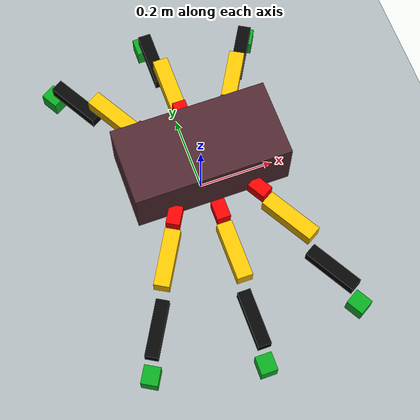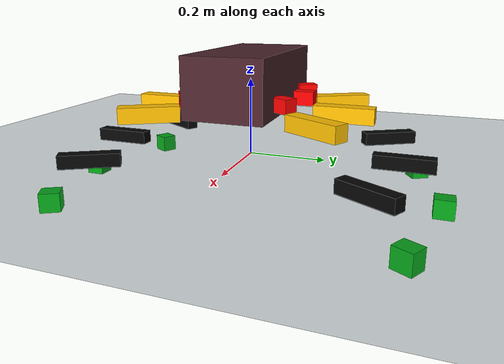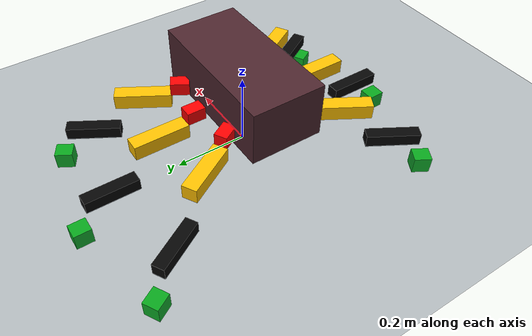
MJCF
<mujoco model="spider_mjcf">
  <compiler angle="radian" coordinate="local" inertiafromgeom="true"/>
  <option timestep="0.002" gravity="0 0 -9.81" integrator="implicitfast"/>
  <size njmax="500" nconmax="200"/>

  <default>
    <joint damping="0.05" armature="0.001"/>
    <geom contype="1" conaffinity="1" condim="3" friction="1 0.005 0.0001"/>
    <default class="leg_link">
      <geom type="box" rgba="0.7 0.7 0.7 1"/>
    </default>
  </default>

  <asset>
    <texture name="grid" type="2d" builtin="checker" width="512" height="512"
             rgb1="0.2 0.3 0.4" rgb2="0.1 0.15 0.2"/>
    <material name="grid_mat" texture="grid" texrepeat="4 4" reflectance="0.1"/>
  <texture type="skybox" builtin="flat" rgb1="1 1 1" rgb2="1 1 1" width="512" height="512"/>
    <material name="body_mat" rgba="0.30 0.15 0.18 1"/>
    <material name="coxa_mat" rgba="1.00 0.00 0.00 1"/>
    <material name="femur_mat" rgba="1.00 0.75 0.00 1"/>
    <material name="tibia_mat" rgba="0.02 0.02 0.02 1"/>
    <material name="foot_mat" rgba="0.00 0.85 0.05 1"/>
  </asset>

  <worldbody>
    <geom name="floor" type="plane" size="3 3 0.1" pos="0 0 0" material="grid_mat" contype="0" conaffinity="1"/>
    <light pos="0 0 2" dir="0 0 -1" diffuse="0.8 0.8 0.8"/>
    <light pos="1 1 2" dir="-0.5 -0.5 -1" diffuse="0.4 0.4 0.4"/>

    <body name="base_link" pos="0 0 0.2">
      <freejoint/>
      <inertial pos="0 0 0" mass="1.8" diaginertia="0.0090 0.0140 0.0150"/>
      <geom name="base_geom" type="box" size="0.20 0.10 0.075" material="body_mat"/>

      <body name="FL_coxa" pos="0.10 0.10 -0.04" euler="0 0 1.0472">
        <joint name="FL_coxa_joint" type="hinge" axis="0 0 1" range="-1.2 1.2"/>
        <geom name="FL_coxa_geom" type="box" size="0.025 0.0175 0.0175" pos="0.025 0 0" material="coxa_mat"/>

        <body name="FL_femur" pos="0.05 0 0">
          <joint name="FL_femur_joint" type="hinge" axis="0 1 0" range="-0.3490658503988659 0.3490658503988659"/>
          <geom name="FL_femur_geom" type="box" size="0.075 0.02 0.02" pos="0.075 0 -0.035" material="femur_mat"/>

          <body name="FL_tibia" pos="0.15 0 -0.07">
            <joint name="FL_tibia_joint" type="hinge" axis="0 1 0" range="-2.5 0.4"/>
            <geom name="FL_tibia_geom" type="box" size="0.075 0.0175 0.0175" pos="0.075 0 -0.075" material="tibia_mat"/>

            <body name="FL_foot" pos="0.15 0 -0.15">
              <geom name="FL_foot_geom" type="box" size="0.025 0.0225 0.025" pos="0.025 0 -0.025" material="foot_mat"/>
            </body>
          </body>
        </body>
      </body>

      <body name="ML_coxa" pos="0.0 0.12 -0.04" euler="0 0 1.5708">
        <joint name="ML_coxa_joint" type="hinge" axis="0 0 1" range="-1.2 1.2"/>
        <geom name="ML_coxa_geom" type="box" size="0.025 0.0175 0.0175" pos="0.025 0 0" material="coxa_mat"/>

        <body name="ML_femur" pos="0.05 0 0">
          <joint name="ML_femur_joint" type="hinge" axis="0 1 0" range="-0.3490658503988659 0.3490658503988659"/>
          <geom name="ML_femur_geom" type="box" size="0.075 0.02 0.02" pos="0.075 0 -0.035" material="femur_mat"/>

          <body name="ML_tibia" pos="0.15 0 -0.07">
            <joint name="ML_tibia_joint" type="hinge" axis="0 1 0" range="-2.5 0.4"/>
            <geom name="ML_tibia_geom" type="box" size="0.075 0.0175 0.0175" pos="0.075 0 -0.075" material="tibia_mat"/>

            <body name="ML_foot" pos="0.15 0 -0.15">
              <geom name="ML_foot_geom" type="box" size="0.025 0.0225 0.025" pos="0.025 0 -0.025" material="foot_mat"/>
            </body>
          </body>
        </body>
      </body>

      <body name="RL_coxa" pos="-0.10 0.10 -0.04" euler="0 0 2.0944">
        <joint name="RL_coxa_joint" type="hinge" axis="0 0 1" range="-1.2 1.2"/>
        <geom name="RL_coxa_geom" type="box" size="0.025 0.0175 0.0175" pos="0.025 0 0" material="coxa_mat"/>

        <body name="RL_femur" pos="0.05 0 0">
          <joint name="RL_femur_joint" type="hinge" axis="0 1 0" range="-0.3490658503988659 0.3490658503988659"/>
          <geom name="RL_femur_geom" type="box" size="0.075 0.02 0.02" pos="0.075 0 -0.035" material="femur_mat"/>

          <body name="RL_tibia" pos="0.15 0 -0.07">
            <joint name="RL_tibia_joint" type="hinge" axis="0 1 0" range="-2.5 0.4"/>
            <geom name="RL_tibia_geom" type="box" size="0.075 0.0175 0.0175" pos="0.075 0 -0.075" material="tibia_mat"/>

            <body name="RL_foot" pos="0.15 0 -0.15">
              <geom name="RL_foot_geom" type="box" size="0.025 0.0225 0.025" pos="0.025 0 -0.025" material="foot_mat"/>
            </body>
          </body>
        </body>
      </body>

      <body name="FR_coxa" pos="0.10 -0.10 -0.04" euler="0 0 -1.0472">
        <joint name="FR_coxa_joint" type="hinge" axis="0 0 1" range="-1.2 1.2"/>
        <geom name="FR_coxa_geom" type="box" size="0.025 0.0175 0.0175" pos="0.025 0 0" material="coxa_mat"/>

        <body name="FR_femur" pos="0.05 0 0">
          <joint name="FR_femur_joint" type="hinge" axis="0 1 0" range="-0.3490658503988659 0.3490658503988659"/>
          <geom name="FR_femur_geom" type="box" size="0.075 0.02 0.02" pos="0.075 0 -0.035" material="femur_mat"/>

          <body name="FR_tibia" pos="0.15 0 -0.07">
            <joint name="FR_tibia_joint" type="hinge" axis="0 1 0" range="-2.5 0.4"/>
            <geom name="FR_tibia_geom" type="box" size="0.075 0.0175 0.0175" pos="0.075 0 -0.075" material="tibia_mat"/>

            <body name="FR_foot" pos="0.15 0 -0.15">
              <geom name="FR_foot_geom" type="box" size="0.025 0.0225 0.025" pos="0.025 0 -0.025" material="foot_mat"/>
            </body>
          </body>
        </body>
      </body>

      <body name="MR_coxa" pos="0.0 -0.12 -0.04" euler="0 0 -1.5708">
        <joint name="MR_coxa_joint" type="hinge" axis="0 0 1" range="-1.2 1.2"/>
        <geom name="MR_coxa_geom" type="box" size="0.025 0.0175 0.0175" pos="0.025 0 0" material="coxa_mat"/>

        <body name="MR_femur" pos="0.05 0 0">
          <joint name="MR_femur_joint" type="hinge" axis="0 1 0" range="-0.3490658503988659 0.3490658503988659"/>
          <geom name="MR_femur_geom" type="box" size="0.075 0.02 0.02" pos="0.075 0 -0.035" material="femur_mat"/>

          <body name="MR_tibia" pos="0.15 0 -0.07">
            <joint name="MR_tibia_joint" type="hinge" axis="0 1 0" range="-2.5 0.4"/>
            <geom name="MR_tibia_geom" type="box" size="0.075 0.0175 0.0175" pos="0.075 0 -0.075" material="tibia_mat"/>

            <body name="MR_foot" pos="0.15 0 -0.15">
              <geom name="MR_foot_geom" type="box" size="0.025 0.0225 0.025" pos="0.025 0 -0.025" material="foot_mat"/>
            </body>
          </body>
        </body>
      </body>

      <body name="RR_coxa" pos="-0.10 -0.10 -0.04" euler="0 0 -2.0944">
        <joint name="RR_coxa_joint" type="hinge" axis="0 0 1" range="-1.2 1.2"/>
        <geom name="RR_coxa_geom" type="box" size="0.025 0.0175 0.0175" pos="0.025 0 0" material="coxa_mat"/>

        <body name="RR_femur" pos="0.05 0 0">
          <joint name="RR_femur_joint" type="hinge" axis="0 1 0" range="-0.3490658503988659 0.3490658503988659"/>
          <geom name="RR_femur_geom" type="box" size="0.075 0.02 0.02" pos="0.075 0 -0.035" material="femur_mat"/>

          <body name="RR_tibia" pos="0.15 0 -0.07">
            <joint name="RR_tibia_joint" type="hinge" axis="0 1 0" range="-2.5 0.4"/>
            <geom name="RR_tibia_geom" type="box" size="0.075 0.0175 0.0175" pos="0.075 0 -0.075" material="tibia_mat"/>

            <body name="RR_foot" pos="0.15 0 -0.15">
              <geom name="RR_foot_geom" type="box" size="0.025 0.0225 0.025" pos="0.025 0 -0.025" material="foot_mat"/>
            </body>
          </body>
        </body>
      </body>
    </body>
  </worldbody>

  <actuator>
    <position name="FL_coxa_act" joint="FL_coxa_joint" kp="20" kv="2" ctrlrange="-1.2 1.2"/>
    <position name="FL_femur_act" joint="FL_femur_joint" kp="20" kv="2" ctrlrange="-0.3490658503988659 0.3490658503988659"/>
    <position name="FL_tibia_act" joint="FL_tibia_joint" kp="20" kv="2" ctrlrange="-2.5 0.4"/>

    <position name="ML_coxa_act" joint="ML_coxa_joint" kp="20" kv="2" ctrlrange="-1.2 1.2"/>
    <position name="ML_femur_act" joint="ML_femur_joint" kp="20" kv="2" ctrlrange="-0.3490658503988659 0.3490658503988659"/>
    <position name="ML_tibia_act" joint="ML_tibia_joint" kp="20" kv="2" ctrlrange="-2.5 0.4"/>

    <position name="RL_coxa_act" joint="RL_coxa_joint" kp="20" kv="2" ctrlrange="-1.2 1.2"/>
    <position name="RL_femur_act" joint="RL_femur_joint" kp="20" kv="2" ctrlrange="-0.3490658503988659 0.3490658503988659"/>
    <position name="RL_tibia_act" joint="RL_tibia_joint" kp="20" kv="2" ctrlrange="-2.5 0.4"/>

    <position name="FR_coxa_act" joint="FR_coxa_joint" kp="20" kv="2" ctrlrange="-1.2 1.2"/>
    <position name="FR_femur_act" joint="FR_femur_joint" kp="20" kv="2" ctrlrange="-0.3490658503988659 0.3490658503988659"/>
    <position name="FR_tibia_act" joint="FR_tibia_joint" kp="20" kv="2" ctrlrange="-2.5 0.4"/>

    <position name="MR_coxa_act" joint="MR_coxa_joint" kp="20" kv="2" ctrlrange="-1.2 1.2"/>
    <position name="MR_femur_act" joint="MR_femur_joint" kp="20" kv="2" ctrlrange="-0.3490658503988659 0.3490658503988659"/>
    <position name="MR_tibia_act" joint="MR_tibia_joint" kp="20" kv="2" ctrlrange="-2.5 0.4"/>

    <position name="RR_coxa_act" joint="RR_coxa_joint" kp="20" kv="2" ctrlrange="-1.2 1.2"/>
    <position name="RR_femur_act" joint="RR_femur_joint" kp="20" kv="2" ctrlrange="-0.3490658503988659 0.3490658503988659"/>
    <position name="RR_tibia_act" joint="RR_tibia_joint" kp="20" kv="2" ctrlrange="-2.5 0.4"/>
  </actuator>
</mujoco>
